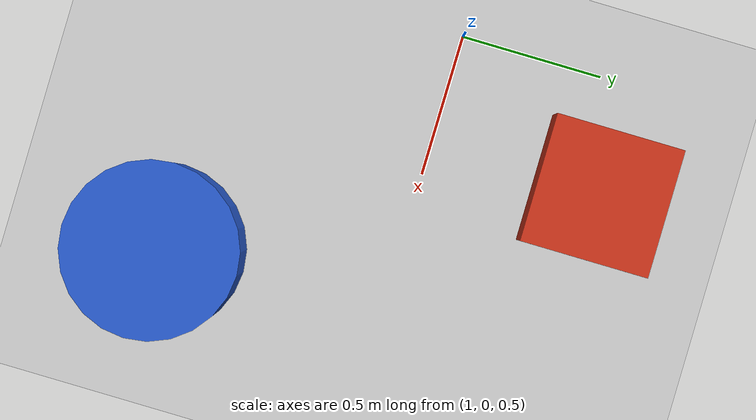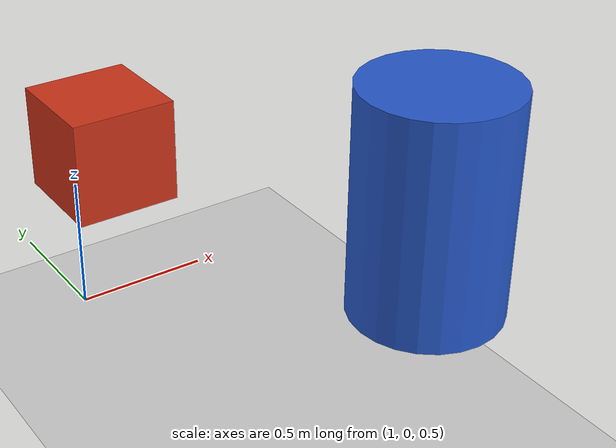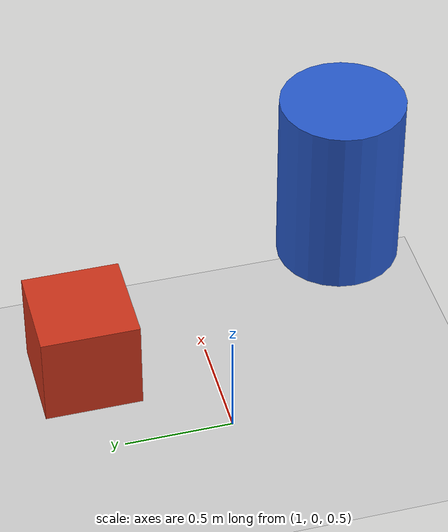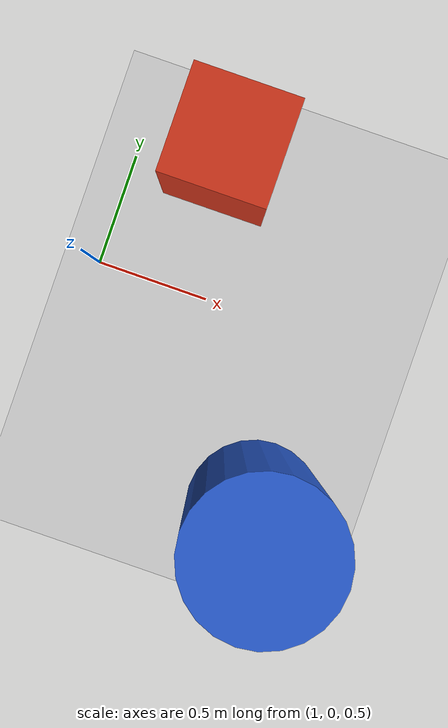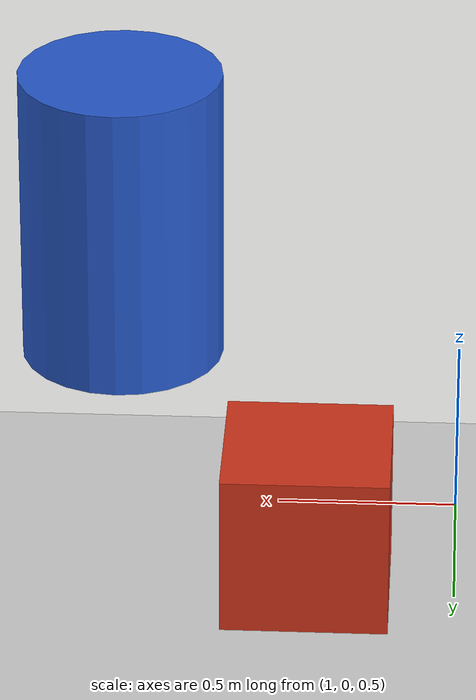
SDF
<?xml version="1.0" ?>
<sdf version="1.6">
  <world name="mid360_demo">
    <gravity>0 0 -9.81</gravity>
    <physics type="ode">
      <max_step_size>0.001</max_step_size>
      <real_time_update_rate>1000</real_time_update_rate>
    </physics>
    <include>
      <uri>model://ground_plane</uri>
    </include>
    <include>
      <uri>model://sun</uri>
    </include>

    <!-- Dynamic objects intentionally start above the ground: moving them in the
         Gazebo GUI demonstrates gravity and prevents collision interpenetration. -->
    <model name="drop_box">
      <pose>1.4 0.6 0.8 0 0 0</pose>
      <link name="link">
        <inertial><mass>2.0</mass><inertia><ixx>0.167</ixx><iyy>0.167</iyy><izz>0.167</izz><ixy>0</ixy><ixz>0</ixz><iyz>0</iyz></inertia></inertial>
        <collision name="collision"><geometry><box><size>0.45 0.45 0.45</size></box></geometry><surface><friction><ode><mu>0.8</mu><mu2>0.8</mu2></ode></friction></surface></collision>
        <visual name="visual"><geometry><box><size>0.45 0.45 0.45</size></box></geometry><material><ambient>0.8 0.2 0.1 1</ambient><diffuse>0.8 0.2 0.1 1</diffuse></material></visual>
      </link>
    </model>
    <model name="drop_cylinder">
      <pose>2.0 -0.8 1.0 0 0 0</pose>
      <link name="link">
        <inertial><mass>3.0</mass><inertia><ixx>0.575</ixx><iyy>0.575</iyy><izz>0.375</izz><ixy>0</ixy><ixz>0</ixz><iyz>0</iyz></inertia></inertial>
        <collision name="collision"><geometry><cylinder><radius>0.3</radius><length>0.9</length></cylinder></geometry></collision>
        <visual name="visual"><geometry><cylinder><radius>0.3</radius><length>0.9</length></cylinder></geometry><material><ambient>0.15 0.35 0.8 1</ambient><diffuse>0.15 0.35 0.8 1</diffuse></material></visual>
      </link>
    </model>
  </world>
</sdf>
